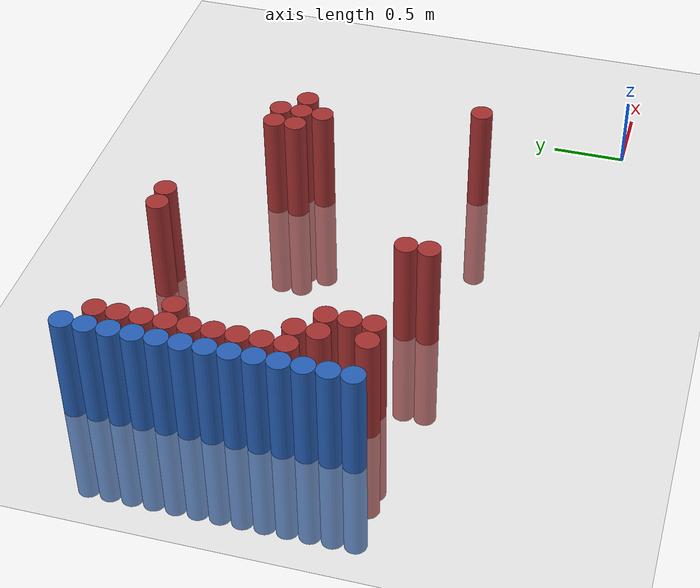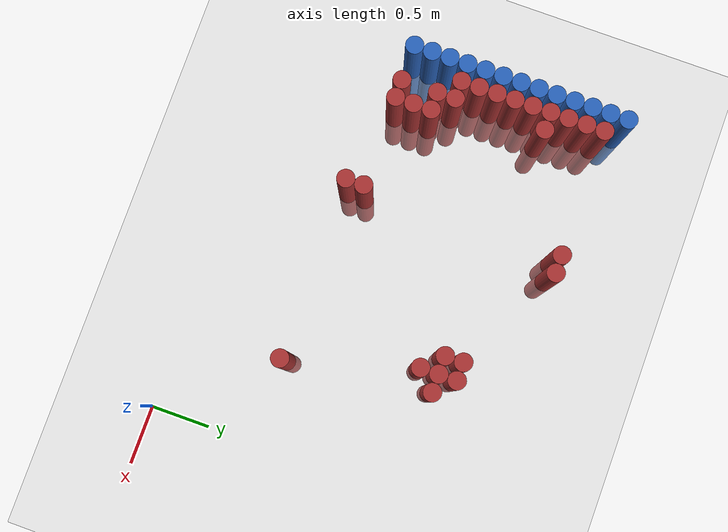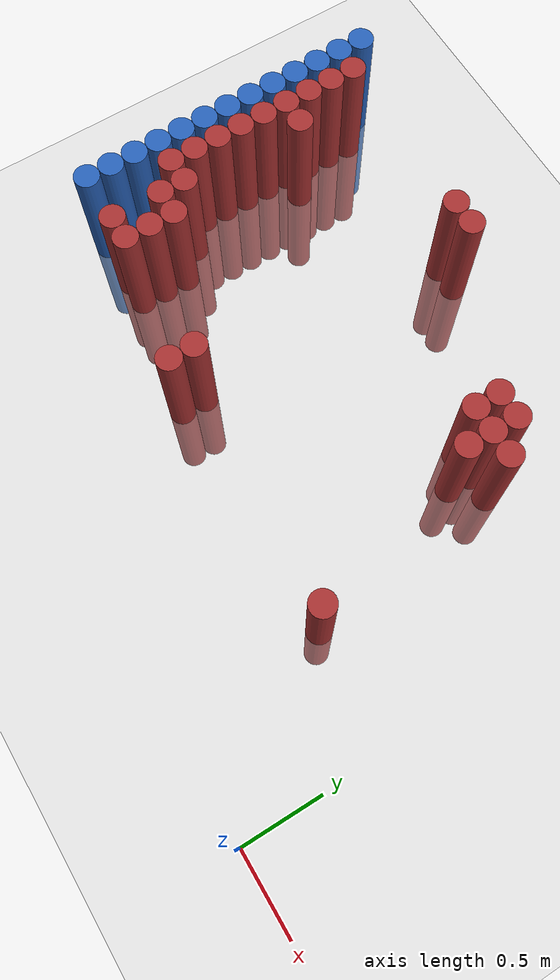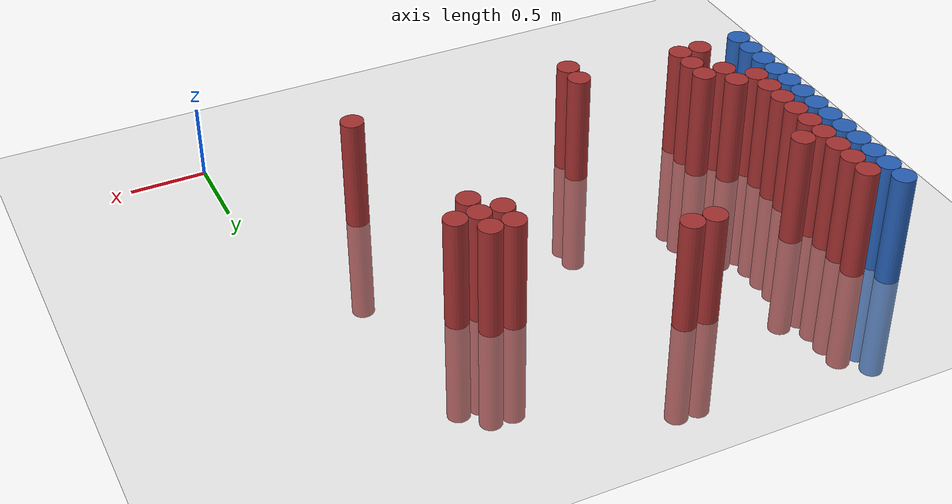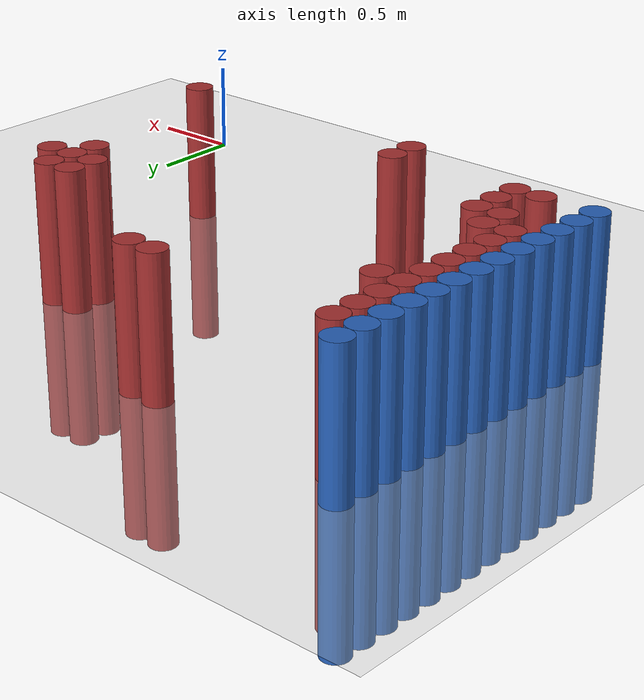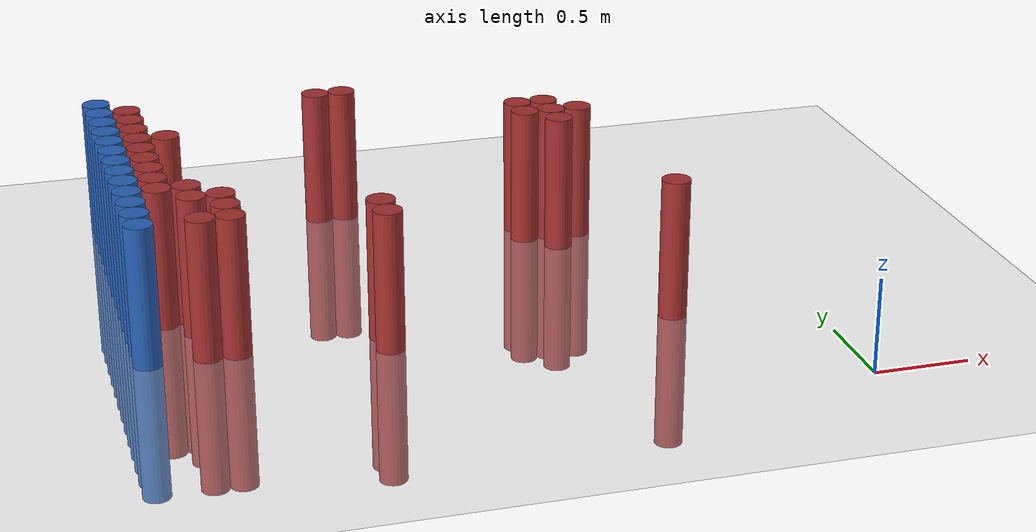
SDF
<sdf version="1.6">
 <world name="default">
  <model name="ground_plane">
   <static>1</static>
   <link name="link">
    <collision name="collision">
     <geometry><plane><normal>0 0 1</normal><size>100 100</size></plane></geometry>
     <surface><friction><ode><mu>100</mu><mu2>50</mu2></ode></friction></surface>
    </collision>
    <visual name="visual">
     <cast_shadows>0</cast_shadows>
     <geometry><plane><normal>0 0 1</normal><size>100 100</size></plane></geometry>
     <material>
      <script><uri>file://media/materials/scripts/gazebo.material</uri><name>Gazebo/Grey</name></script>
     </material>
    </visual>
   </link>
  </model>
  <model name="unit_cylinder_129">
   <static>1</static>
   <pose>-3.425000 1.075000 0.000000 0.000000 0.000000 0.000000</pose>
   <link name="link">
    <inertial>
     <mass>1</mass>
     <inertia><ixx>0.145833</ixx><ixy>0</ixy><ixz>0</ixz><iyy>0.145833</iyy><iyz>0</iyz><izz>0.125</izz></inertia>
    </inertial>
    <collision name="collision">
     <geometry><cylinder><radius>0.075000</radius><length>1.5</length></cylinder></geometry>
    </collision>
    <visual name="visual">
     <geometry><cylinder><radius>0.075000</radius><length>1.5</length></cylinder></geometry>
     <material>
      <ambient>0.152000 0.379000 0.720000 1</ambient>
      <diffuse>0.152000 0.379000 0.720000 1</diffuse>
     </material>
     <material>
      <script><name>Gazebo/Grey</name><uri>file://media/materials/scripts/gazebo.material</uri></script>
     </material>
    </visual>
   </link>
  </model>
  <model name="unit_cylinder_131">
   <static>1</static>
   <pose>-3.425000 1.225000 0.000000 0.000000 0.000000 0.000000</pose>
   <link name="link">
    <inertial>
     <mass>1</mass>
     <inertia><ixx>0.145833</ixx><ixy>0</ixy><ixz>0</ixz><iyy>0.145833</iyy><iyz>0</iyz><izz>0.125</izz></inertia>
    </inertial>
    <collision name="collision">
     <geometry><cylinder><radius>0.075000</radius><length>1.5</length></cylinder></geometry>
    </collision>
    <visual name="visual">
     <geometry><cylinder><radius>0.075000</radius><length>1.5</length></cylinder></geometry>
     <material>
      <ambient>0.152000 0.379000 0.720000 1</ambient>
      <diffuse>0.152000 0.379000 0.720000 1</diffuse>
     </material>
     <material>
      <script><name>Gazebo/Grey</name><uri>file://media/materials/scripts/gazebo.material</uri></script>
     </material>
    </visual>
   </link>
  </model>
  <model name="unit_cylinder_133">
   <static>1</static>
   <pose>-3.425000 1.375000 0.000000 0.000000 0.000000 0.000000</pose>
   <link name="link">
    <inertial>
     <mass>1</mass>
     <inertia><ixx>0.145833</ixx><ixy>0</ixy><ixz>0</ixz><iyy>0.145833</iyy><iyz>0</iyz><izz>0.125</izz></inertia>
    </inertial>
    <collision name="collision">
     <geometry><cylinder><radius>0.075000</radius><length>1.5</length></cylinder></geometry>
    </collision>
    <visual name="visual">
     <geometry><cylinder><radius>0.075000</radius><length>1.5</length></cylinder></geometry>
     <material>
      <ambient>0.152000 0.379000 0.720000 1</ambient>
      <diffuse>0.152000 0.379000 0.720000 1</diffuse>
     </material>
     <material>
      <script><name>Gazebo/Grey</name><uri>file://media/materials/scripts/gazebo.material</uri></script>
     </material>
    </visual>
   </link>
  </model>
  <model name="unit_cylinder_135">
   <static>1</static>
   <pose>-3.425000 1.525000 0.000000 0.000000 0.000000 0.000000</pose>
   <link name="link">
    <inertial>
     <mass>1</mass>
     <inertia><ixx>0.145833</ixx><ixy>0</ixy><ixz>0</ixz><iyy>0.145833</iyy><iyz>0</iyz><izz>0.125</izz></inertia>
    </inertial>
    <collision name="collision">
     <geometry><cylinder><radius>0.075000</radius><length>1.5</length></cylinder></geometry>
    </collision>
    <visual name="visual">
     <geometry><cylinder><radius>0.075000</radius><length>1.5</length></cylinder></geometry>
     <material>
      <ambient>0.152000 0.379000 0.720000 1</ambient>
      <diffuse>0.152000 0.379000 0.720000 1</diffuse>
     </material>
     <material>
      <script><name>Gazebo/Grey</name><uri>file://media/materials/scripts/gazebo.material</uri></script>
     </material>
    </visual>
   </link>
  </model>
  <model name="unit_cylinder_137">
   <static>1</static>
   <pose>-3.425000 1.675000 0.000000 0.000000 0.000000 0.000000</pose>
   <link name="link">
    <inertial>
     <mass>1</mass>
     <inertia><ixx>0.145833</ixx><ixy>0</ixy><ixz>0</ixz><iyy>0.145833</iyy><iyz>0</iyz><izz>0.125</izz></inertia>
    </inertial>
    <collision name="collision">
     <geometry><cylinder><radius>0.075000</radius><length>1.5</length></cylinder></geometry>
    </collision>
    <visual name="visual">
     <geometry><cylinder><radius>0.075000</radius><length>1.5</length></cylinder></geometry>
     <material>
      <ambient>0.152000 0.379000 0.720000 1</ambient>
      <diffuse>0.152000 0.379000 0.720000 1</diffuse>
     </material>
     <material>
      <script><name>Gazebo/Grey</name><uri>file://media/materials/scripts/gazebo.material</uri></script>
     </material>
    </visual>
   </link>
  </model>
  <model name="unit_cylinder_139">
   <static>1</static>
   <pose>-3.425000 1.825000 0.000000 0.000000 0.000000 0.000000</pose>
   <link name="link">
    <inertial>
     <mass>1</mass>
     <inertia><ixx>0.145833</ixx><ixy>0</ixy><ixz>0</ixz><iyy>0.145833</iyy><iyz>0</iyz><izz>0.125</izz></inertia>
    </inertial>
    <collision name="collision">
     <geometry><cylinder><radius>0.075000</radius><length>1.5</length></cylinder></geometry>
    </collision>
    <visual name="visual">
     <geometry><cylinder><radius>0.075000</radius><length>1.5</length></cylinder></geometry>
     <material>
      <ambient>0.152000 0.379000 0.720000 1</ambient>
      <diffuse>0.152000 0.379000 0.720000 1</diffuse>
     </material>
     <material>
      <script><name>Gazebo/Grey</name><uri>file://media/materials/scripts/gazebo.material</uri></script>
     </material>
    </visual>
   </link>
  </model>
  <model name="unit_cylinder_141">
   <static>1</static>
   <pose>-3.425000 1.975000 0.000000 0.000000 0.000000 0.000000</pose>
   <link name="link">
    <inertial>
     <mass>1</mass>
     <inertia><ixx>0.145833</ixx><ixy>0</ixy><ixz>0</ixz><iyy>0.145833</iyy><iyz>0</iyz><izz>0.125</izz></inertia>
    </inertial>
    <collision name="collision">
     <geometry><cylinder><radius>0.075000</radius><length>1.5</length></cylinder></geometry>
    </collision>
    <visual name="visual">
     <geometry><cylinder><radius>0.075000</radius><length>1.5</length></cylinder></geometry>
     <material>
      <ambient>0.152000 0.379000 0.720000 1</ambient>
      <diffuse>0.152000 0.379000 0.720000 1</diffuse>
     </material>
     <material>
      <script><name>Gazebo/Grey</name><uri>file://media/materials/scripts/gazebo.material</uri></script>
     </material>
    </visual>
   </link>
  </model>
  <model name="unit_cylinder_143">
   <static>1</static>
   <pose>-3.425000 2.125000 0.000000 0.000000 0.000000 0.000000</pose>
   <link name="link">
    <inertial>
     <mass>1</mass>
     <inertia><ixx>0.145833</ixx><ixy>0</ixy><ixz>0</ixz><iyy>0.145833</iyy><iyz>0</iyz><izz>0.125</izz></inertia>
    </inertial>
    <collision name="collision">
     <geometry><cylinder><radius>0.075000</radius><length>1.5</length></cylinder></geometry>
    </collision>
    <visual name="visual">
     <geometry><cylinder><radius>0.075000</radius><length>1.5</length></cylinder></geometry>
     <material>
      <ambient>0.152000 0.379000 0.720000 1</ambient>
      <diffuse>0.152000 0.379000 0.720000 1</diffuse>
     </material>
     <material>
      <script><name>Gazebo/Grey</name><uri>file://media/materials/scripts/gazebo.material</uri></script>
     </material>
    </visual>
   </link>
  </model>
  <model name="unit_cylinder_145">
   <static>1</static>
   <pose>-3.425000 2.275000 0.000000 0.000000 0.000000 0.000000</pose>
   <link name="link">
    <inertial>
     <mass>1</mass>
     <inertia><ixx>0.145833</ixx><ixy>0</ixy><ixz>0</ixz><iyy>0.145833</iyy><iyz>0</iyz><izz>0.125</izz></inertia>
    </inertial>
    <collision name="collision">
     <geometry><cylinder><radius>0.075000</radius><length>1.5</length></cylinder></geometry>
    </collision>
    <visual name="visual">
     <geometry><cylinder><radius>0.075000</radius><length>1.5</length></cylinder></geometry>
     <material>
      <ambient>0.152000 0.379000 0.720000 1</ambient>
      <diffuse>0.152000 0.379000 0.720000 1</diffuse>
     </material>
     <material>
      <script><name>Gazebo/Grey</name><uri>file://media/materials/scripts/gazebo.material</uri></script>
     </material>
    </visual>
   </link>
  </model>
  <model name="unit_cylinder_147">
   <static>1</static>
   <pose>-3.425000 2.425000 0.000000 0.000000 0.000000 0.000000</pose>
   <link name="link">
    <inertial>
     <mass>1</mass>
     <inertia><ixx>0.145833</ixx><ixy>0</ixy><ixz>0</ixz><iyy>0.145833</iyy><iyz>0</iyz><izz>0.125</izz></inertia>
    </inertial>
    <collision name="collision">
     <geometry><cylinder><radius>0.075000</radius><length>1.5</length></cylinder></geometry>
    </collision>
    <visual name="visual">
     <geometry><cylinder><radius>0.075000</radius><length>1.5</length></cylinder></geometry>
     <material>
      <ambient>0.152000 0.379000 0.720000 1</ambient>
      <diffuse>0.152000 0.379000 0.720000 1</diffuse>
     </material>
     <material>
      <script><name>Gazebo/Grey</name><uri>file://media/materials/scripts/gazebo.material</uri></script>
     </material>
    </visual>
   </link>
  </model>
  <model name="unit_cylinder_149">
   <static>1</static>
   <pose>-3.425000 2.575000 0.000000 0.000000 0.000000 0.000000</pose>
   <link name="link">
    <inertial>
     <mass>1</mass>
     <inertia><ixx>0.145833</ixx><ixy>0</ixy><ixz>0</ixz><iyy>0.145833</iyy><iyz>0</iyz><izz>0.125</izz></inertia>
    </inertial>
    <collision name="collision">
     <geometry><cylinder><radius>0.075000</radius><length>1.5</length></cylinder></geometry>
    </collision>
    <visual name="visual">
     <geometry><cylinder><radius>0.075000</radius><length>1.5</length></cylinder></geometry>
     <material>
      <ambient>0.152000 0.379000 0.720000 1</ambient>
      <diffuse>0.152000 0.379000 0.720000 1</diffuse>
     </material>
     <material>
      <script><name>Gazebo/Grey</name><uri>file://media/materials/scripts/gazebo.material</uri></script>
     </material>
    </visual>
   </link>
  </model>
  <model name="unit_cylinder_151">
   <static>1</static>
   <pose>-3.425000 2.725000 0.000000 0.000000 0.000000 0.000000</pose>
   <link name="link">
    <inertial>
     <mass>1</mass>
     <inertia><ixx>0.145833</ixx><ixy>0</ixy><ixz>0</ixz><iyy>0.145833</iyy><iyz>0</iyz><izz>0.125</izz></inertia>
    </inertial>
    <collision name="collision">
     <geometry><cylinder><radius>0.075000</radius><length>1.5</length></cylinder></geometry>
    </collision>
    <visual name="visual">
     <geometry><cylinder><radius>0.075000</radius><length>1.5</length></cylinder></geometry>
     <material>
      <ambient>0.152000 0.379000 0.720000 1</ambient>
      <diffuse>0.152000 0.379000 0.720000 1</diffuse>
     </material>
     <material>
      <script><name>Gazebo/Grey</name><uri>file://media/materials/scripts/gazebo.material</uri></script>
     </material>
    </visual>
   </link>
  </model>
  <model name="unit_cylinder_153">
   <static>1</static>
   <pose>-3.425000 2.875000 0.000000 0.000000 0.000000 0.000000</pose>
   <link name="link">
    <inertial>
     <mass>1</mass>
     <inertia><ixx>0.145833</ixx><ixy>0</ixy><ixz>0</ixz><iyy>0.145833</iyy><iyz>0</iyz><izz>0.125</izz></inertia>
    </inertial>
    <collision name="collision">
     <geometry><cylinder><radius>0.075000</radius><length>1.5</length></cylinder></geometry>
    </collision>
    <visual name="visual">
     <geometry><cylinder><radius>0.075000</radius><length>1.5</length></cylinder></geometry>
     <material>
      <ambient>0.152000 0.379000 0.720000 1</ambient>
      <diffuse>0.152000 0.379000 0.720000 1</diffuse>
     </material>
     <material>
      <script><name>Gazebo/Grey</name><uri>file://media/materials/scripts/gazebo.material</uri></script>
     </material>
    </visual>
   </link>
  </model>
  <model name="unit_cylinder_228">
   <static>1</static>
   <pose>-3.425000 1.075000 0.000000 0.000000 0.000000 0.000000</pose>
   <link name="link">
    <inertial>
     <mass>1</mass>
     <inertia><ixx>0.145833</ixx><ixy>0</ixy><ixz>0</ixz><iyy>0.145833</iyy><iyz>0</iyz><izz>0.125</izz></inertia>
    </inertial>
    <collision name="collision">
     <geometry><cylinder><radius>0.075000</radius><length>1.5</length></cylinder></geometry>
    </collision>
    <visual name="visual">
     <geometry><cylinder><radius>0.075000</radius><length>1.5</length></cylinder></geometry>
     <material>
      <ambient>0.152000 0.379000 0.720000 1</ambient>
      <diffuse>0.152000 0.379000 0.720000 1</diffuse>
     </material>
     <material>
      <script><name>Gazebo/Grey</name><uri>file://media/materials/scripts/gazebo.material</uri></script>
     </material>
    </visual>
   </link>
  </model>
  <model name="unit_cylinder_229">
   <static>1</static>
   <pose>-3.425000 1.225000 0.000000 0.000000 0.000000 0.000000</pose>
   <link name="link">
    <inertial>
     <mass>1</mass>
     <inertia><ixx>0.145833</ixx><ixy>0</ixy><ixz>0</ixz><iyy>0.145833</iyy><iyz>0</iyz><izz>0.125</izz></inertia>
    </inertial>
    <collision name="collision">
     <geometry><cylinder><radius>0.075000</radius><length>1.5</length></cylinder></geometry>
    </collision>
    <visual name="visual">
     <geometry><cylinder><radius>0.075000</radius><length>1.5</length></cylinder></geometry>
     <material>
      <ambient>0.152000 0.379000 0.720000 1</ambient>
      <diffuse>0.152000 0.379000 0.720000 1</diffuse>
     </material>
     <material>
      <script><name>Gazebo/Grey</name><uri>file://media/materials/scripts/gazebo.material</uri></script>
     </material>
    </visual>
   </link>
  </model>
  <model name="unit_cylinder_230">
   <static>1</static>
   <pose>-3.425000 1.375000 0.000000 0.000000 0.000000 0.000000</pose>
   <link name="link">
    <inertial>
     <mass>1</mass>
     <inertia><ixx>0.145833</ixx><ixy>0</ixy><ixz>0</ixz><iyy>0.145833</iyy><iyz>0</iyz><izz>0.125</izz></inertia>
    </inertial>
    <collision name="collision">
     <geometry><cylinder><radius>0.075000</radius><length>1.5</length></cylinder></geometry>
    </collision>
    <visual name="visual">
     <geometry><cylinder><radius>0.075000</radius><length>1.5</length></cylinder></geometry>
     <material>
      <ambient>0.152000 0.379000 0.720000 1</ambient>
      <diffuse>0.152000 0.379000 0.720000 1</diffuse>
     </material>
     <material>
      <script><name>Gazebo/Grey</name><uri>file://media/materials/scripts/gazebo.material</uri></script>
     </material>
    </visual>
   </link>
  </model>
  <model name="unit_cylinder_231">
   <static>1</static>
   <pose>-3.425000 1.525000 0.000000 0.000000 0.000000 0.000000</pose>
   <link name="link">
    <inertial>
     <mass>1</mass>
     <inertia><ixx>0.145833</ixx><ixy>0</ixy><ixz>0</ixz><iyy>0.145833</iyy><iyz>0</iyz><izz>0.125</izz></inertia>
    </inertial>
    <collision name="collision">
     <geometry><cylinder><radius>0.075000</radius><length>1.5</length></cylinder></geometry>
    </collision>
    <visual name="visual">
     <geometry><cylinder><radius>0.075000</radius><length>1.5</length></cylinder></geometry>
     <material>
      <ambient>0.152000 0.379000 0.720000 1</ambient>
      <diffuse>0.152000 0.379000 0.720000 1</diffuse>
     </material>
     <material>
      <script><name>Gazebo/Grey</name><uri>file://media/materials/scripts/gazebo.material</uri></script>
     </material>
    </visual>
   </link>
  </model>
  <model name="unit_cylinder_232">
   <static>1</static>
   <pose>-3.425000 1.675000 0.000000 0.000000 0.000000 0.000000</pose>
   <link name="link">
    <inertial>
     <mass>1</mass>
     <inertia><ixx>0.145833</ixx><ixy>0</ixy><ixz>0</ixz><iyy>0.145833</iyy><iyz>0</iyz><izz>0.125</izz></inertia>
    </inertial>
    <collision name="collision">
     <geometry><cylinder><radius>0.075000</radius><length>1.5</length></cylinder></geometry>
    </collision>
    <visual name="visual">
     <geometry><cylinder><radius>0.075000</radius><length>1.5</length></cylinder></geometry>
     <material>
      <ambient>0.152000 0.379000 0.720000 1</ambient>
      <diffuse>0.152000 0.379000 0.720000 1</diffuse>
     </material>
     <material>
      <script><name>Gazebo/Grey</name><uri>file://media/materials/scripts/gazebo.material</uri></script>
     </material>
    </visual>
   </link>
  </model>
  <model name="unit_cylinder_233">
   <static>1</static>
   <pose>-3.425000 1.825000 0.000000 0.000000 0.000000 0.000000</pose>
   <link name="link">
    <inertial>
     <mass>1</mass>
     <inertia><ixx>0.145833</ixx><ixy>0</ixy><ixz>0</ixz><iyy>0.145833</iyy><iyz>0</iyz><izz>0.125</izz></inertia>
    </inertial>
    <collision name="collision">
     <geometry><cylinder><radius>0.075000</radius><length>1.5</length></cylinder></geometry>
    </collision>
    <visual name="visual">
     <geometry><cylinder><radius>0.075000</radius><length>1.5</length></cylinder></geometry>
     <material>
      <ambient>0.152000 0.379000 0.720000 1</ambient>
      <diffuse>0.152000 0.379000 0.720000 1</diffuse>
     </material>
     <material>
      <script><name>Gazebo/Grey</name><uri>file://media/materials/scripts/gazebo.material</uri></script>
     </material>
    </visual>
   </link>
  </model>
  <model name="unit_cylinder_234">
   <static>1</static>
   <pose>-3.425000 1.975000 0.000000 0.000000 0.000000 0.000000</pose>
   <link name="link">
    <inertial>
     <mass>1</mass>
     <inertia><ixx>0.145833</ixx><ixy>0</ixy><ixz>0</ixz><iyy>0.145833</iyy><iyz>0</iyz><izz>0.125</izz></inertia>
    </inertial>
    <collision name="collision">
     <geometry><cylinder><radius>0.075000</radius><length>1.5</length></cylinder></geometry>
    </collision>
    <visual name="visual">
     <geometry><cylinder><radius>0.075000</radius><length>1.5</length></cylinder></geometry>
     <material>
      <ambient>0.152000 0.379000 0.720000 1</ambient>
      <diffuse>0.152000 0.379000 0.720000 1</diffuse>
     </material>
     <material>
      <script><name>Gazebo/Grey</name><uri>file://media/materials/scripts/gazebo.material</uri></script>
     </material>
    </visual>
   </link>
  </model>
  <model name="unit_cylinder_235">
   <static>1</static>
   <pose>-3.425000 2.125000 0.000000 0.000000 0.000000 0.000000</pose>
   <link name="link">
    <inertial>
     <mass>1</mass>
     <inertia><ixx>0.145833</ixx><ixy>0</ixy><ixz>0</ixz><iyy>0.145833</iyy><iyz>0</iyz><izz>0.125</izz></inertia>
    </inertial>
    <collision name="collision">
     <geometry><cylinder><radius>0.075000</radius><length>1.5</length></cylinder></geometry>
    </collision>
    <visual name="visual">
     <geometry><cylinder><radius>0.075000</radius><length>1.5</length></cylinder></geometry>
     <material>
      <ambient>0.152000 0.379000 0.720000 1</ambient>
      <diffuse>0.152000 0.379000 0.720000 1</diffuse>
     </material>
     <material>
      <script><name>Gazebo/Grey</name><uri>file://media/materials/scripts/gazebo.material</uri></script>
     </material>
    </visual>
   </link>
  </model>
  <model name="unit_cylinder_236">
   <static>1</static>
   <pose>-3.425000 2.275000 0.000000 0.000000 0.000000 0.000000</pose>
   <link name="link">
    <inertial>
     <mass>1</mass>
     <inertia><ixx>0.145833</ixx><ixy>0</ixy><ixz>0</ixz><iyy>0.145833</iyy><iyz>0</iyz><izz>0.125</izz></inertia>
    </inertial>
    <collision name="collision">
     <geometry><cylinder><radius>0.075000</radius><length>1.5</length></cylinder></geometry>
    </collision>
    <visual name="visual">
     <geometry><cylinder><radius>0.075000</radius><length>1.5</length></cylinder></geometry>
     <material>
      <ambient>0.152000 0.379000 0.720000 1</ambient>
      <diffuse>0.152000 0.379000 0.720000 1</diffuse>
     </material>
     <material>
      <script><name>Gazebo/Grey</name><uri>file://media/materials/scripts/gazebo.material</uri></script>
     </material>
    </visual>
   </link>
  </model>
  <model name="unit_cylinder_237">
   <static>1</static>
   <pose>-3.425000 2.425000 0.000000 0.000000 0.000000 0.000000</pose>
   <link name="link">
    <inertial>
     <mass>1</mass>
     <inertia><ixx>0.145833</ixx><ixy>0</ixy><ixz>0</ixz><iyy>0.145833</iyy><iyz>0</iyz><izz>0.125</izz></inertia>
    </inertial>
    <collision name="collision">
     <geometry><cylinder><radius>0.075000</radius><length>1.5</length></cylinder></geometry>
    </collision>
    <visual name="visual">
     <geometry><cylinder><radius>0.075000</radius><length>1.5</length></cylinder></geometry>
     <material>
      <ambient>0.152000 0.379000 0.720000 1</ambient>
      <diffuse>0.152000 0.379000 0.720000 1</diffuse>
     </material>
     <material>
      <script><name>Gazebo/Grey</name><uri>file://media/materials/scripts/gazebo.material</uri></script>
     </material>
    </visual>
   </link>
  </model>
  <model name="unit_cylinder_238">
   <static>1</static>
   <pose>-3.425000 2.575000 0.000000 0.000000 0.000000 0.000000</pose>
   <link name="link">
    <inertial>
     <mass>1</mass>
     <inertia><ixx>0.145833</ixx><ixy>0</ixy><ixz>0</ixz><iyy>0.145833</iyy><iyz>0</iyz><izz>0.125</izz></inertia>
    </inertial>
    <collision name="collision">
     <geometry><cylinder><radius>0.075000</radius><length>1.5</length></cylinder></geometry>
    </collision>
    <visual name="visual">
     <geometry><cylinder><radius>0.075000</radius><length>1.5</length></cylinder></geometry>
     <material>
      <ambient>0.152000 0.379000 0.720000 1</ambient>
      <diffuse>0.152000 0.379000 0.720000 1</diffuse>
     </material>
     <material>
      <script><name>Gazebo/Grey</name><uri>file://media/materials/scripts/gazebo.material</uri></script>
     </material>
    </visual>
   </link>
  </model>
  <model name="unit_cylinder_239">
   <static>1</static>
   <pose>-3.425000 2.725000 0.000000 0.000000 0.000000 0.000000</pose>
   <link name="link">
    <inertial>
     <mass>1</mass>
     <inertia><ixx>0.145833</ixx><ixy>0</ixy><ixz>0</ixz><iyy>0.145833</iyy><iyz>0</iyz><izz>0.125</izz></inertia>
    </inertial>
    <collision name="collision">
     <geometry><cylinder><radius>0.075000</radius><length>1.5</length></cylinder></geometry>
    </collision>
    <visual name="visual">
     <geometry><cylinder><radius>0.075000</radius><length>1.5</length></cylinder></geometry>
     <material>
      <ambient>0.152000 0.379000 0.720000 1</ambient>
      <diffuse>0.152000 0.379000 0.720000 1</diffuse>
     </material>
     <material>
      <script><name>Gazebo/Grey</name><uri>file://media/materials/scripts/gazebo.material</uri></script>
     </material>
    </visual>
   </link>
  </model>
  <model name="unit_cylinder_262">
   <static>1</static>
   <pose>-3.275000 1.525000 0.000000 0.000000 0.000000 0.000000</pose>
   <link name="link">
    <inertial>
     <mass>1</mass>
     <inertia><ixx>0.145833</ixx><ixy>0</ixy><ixz>0</ixz><iyy>0.145833</iyy><iyz>0</iyz><izz>0.125</izz></inertia>
    </inertial>
    <collision name="collision">
     <geometry><cylinder><radius>0.075000</radius><length>1.5</length></cylinder></geometry>
    </collision>
    <visual name="visual">
     <geometry><cylinder><radius>0.075000</radius><length>1.5</length></cylinder></geometry>
     <material>
      <ambient>0.648000 0.192000 0.192000 1</ambient>
      <diffuse>0.648000 0.192000 0.192000 1</diffuse>
     </material>
     <material>
      <script><name>Gazebo/Grey</name><uri>file://media/materials/scripts/gazebo.material</uri></script>
     </material>
    </visual>
   </link>
  </model>
  <model name="unit_cylinder_263">
   <static>1</static>
   <pose>-3.275000 1.675000 0.000000 0.000000 0.000000 0.000000</pose>
   <link name="link">
    <inertial>
     <mass>1</mass>
     <inertia><ixx>0.145833</ixx><ixy>0</ixy><ixz>0</ixz><iyy>0.145833</iyy><iyz>0</iyz><izz>0.125</izz></inertia>
    </inertial>
    <collision name="collision">
     <geometry><cylinder><radius>0.075000</radius><length>1.5</length></cylinder></geometry>
    </collision>
    <visual name="visual">
     <geometry><cylinder><radius>0.075000</radius><length>1.5</length></cylinder></geometry>
     <material>
      <ambient>0.648000 0.192000 0.192000 1</ambient>
      <diffuse>0.648000 0.192000 0.192000 1</diffuse>
     </material>
     <material>
      <script><name>Gazebo/Grey</name><uri>file://media/materials/scripts/gazebo.material</uri></script>
     </material>
    </visual>
   </link>
  </model>
  <model name="unit_cylinder_264">
   <static>1</static>
   <pose>-3.275000 1.825000 0.000000 0.000000 0.000000 0.000000</pose>
   <link name="link">
    <inertial>
     <mass>1</mass>
     <inertia><ixx>0.145833</ixx><ixy>0</ixy><ixz>0</ixz><iyy>0.145833</iyy><iyz>0</iyz><izz>0.125</izz></inertia>
    </inertial>
    <collision name="collision">
     <geometry><cylinder><radius>0.075000</radius><length>1.5</length></cylinder></geometry>
    </collision>
    <visual name="visual">
     <geometry><cylinder><radius>0.075000</radius><length>1.5</length></cylinder></geometry>
     <material>
      <ambient>0.648000 0.192000 0.192000 1</ambient>
      <diffuse>0.648000 0.192000 0.192000 1</diffuse>
     </material>
     <material>
      <script><name>Gazebo/Grey</name><uri>file://media/materials/scripts/gazebo.material</uri></script>
     </material>
    </visual>
   </link>
  </model>
  <model name="unit_cylinder_265">
   <static>1</static>
   <pose>-3.275000 1.975000 0.000000 0.000000 0.000000 0.000000</pose>
   <link name="link">
    <inertial>
     <mass>1</mass>
     <inertia><ixx>0.145833</ixx><ixy>0</ixy><ixz>0</ixz><iyy>0.145833</iyy><iyz>0</iyz><izz>0.125</izz></inertia>
    </inertial>
    <collision name="collision">
     <geometry><cylinder><radius>0.075000</radius><length>1.5</length></cylinder></geometry>
    </collision>
    <visual name="visual">
     <geometry><cylinder><radius>0.075000</radius><length>1.5</length></cylinder></geometry>
     <material>
      <ambient>0.648000 0.192000 0.192000 1</ambient>
      <diffuse>0.648000 0.192000 0.192000 1</diffuse>
     </material>
     <material>
      <script><name>Gazebo/Grey</name><uri>file://media/materials/scripts/gazebo.material</uri></script>
     </material>
    </visual>
   </link>
  </model>
  <model name="unit_cylinder_266">
   <static>1</static>
   <pose>-3.275000 2.125000 0.000000 0.000000 0.000000 0.000000</pose>
   <link name="link">
    <inertial>
     <mass>1</mass>
     <inertia><ixx>0.145833</ixx><ixy>0</ixy><ixz>0</ixz><iyy>0.145833</iyy><iyz>0</iyz><izz>0.125</izz></inertia>
    </inertial>
    <collision name="collision">
     <geometry><cylinder><radius>0.075000</radius><length>1.5</length></cylinder></geometry>
    </collision>
    <visual name="visual">
     <geometry><cylinder><radius>0.075000</radius><length>1.5</length></cylinder></geometry>
     <material>
      <ambient>0.648000 0.192000 0.192000 1</ambient>
      <diffuse>0.648000 0.192000 0.192000 1</diffuse>
     </material>
     <material>
      <script><name>Gazebo/Grey</name><uri>file://media/materials/scripts/gazebo.material</uri></script>
     </material>
    </visual>
   </link>
  </model>
  <model name="unit_cylinder_267">
   <static>1</static>
   <pose>-3.275000 2.275000 0.000000 0.000000 0.000000 0.000000</pose>
   <link name="link">
    <inertial>
     <mass>1</mass>
     <inertia><ixx>0.145833</ixx><ixy>0</ixy><ixz>0</ixz><iyy>0.145833</iyy><iyz>0</iyz><izz>0.125</izz></inertia>
    </inertial>
    <collision name="collision">
     <geometry><cylinder><radius>0.075000</radius><length>1.5</length></cylinder></geometry>
    </collision>
    <visual name="visual">
     <geometry><cylinder><radius>0.075000</radius><length>1.5</length></cylinder></geometry>
     <material>
      <ambient>0.648000 0.192000 0.192000 1</ambient>
      <diffuse>0.648000 0.192000 0.192000 1</diffuse>
     </material>
     <material>
      <script><name>Gazebo/Grey</name><uri>file://media/materials/scripts/gazebo.material</uri></script>
     </material>
    </visual>
   </link>
  </model>
  <model name="unit_cylinder_268">
   <static>1</static>
   <pose>-3.275000 2.425000 0.000000 0.000000 0.000000 0.000000</pose>
   <link name="link">
    <inertial>
     <mass>1</mass>
     <inertia><ixx>0.145833</ixx><ixy>0</ixy><ixz>0</ixz><iyy>0.145833</iyy><iyz>0</iyz><izz>0.125</izz></inertia>
    </inertial>
    <collision name="collision">
     <geometry><cylinder><radius>0.075000</radius><length>1.5</length></cylinder></geometry>
    </collision>
    <visual name="visual">
     <geometry><cylinder><radius>0.075000</radius><length>1.5</length></cylinder></geometry>
     <material>
      <ambient>0.648000 0.192000 0.192000 1</ambient>
      <diffuse>0.648000 0.192000 0.192000 1</diffuse>
     </material>
     <material>
      <script><name>Gazebo/Grey</name><uri>file://media/materials/scripts/gazebo.material</uri></script>
     </material>
    </visual>
   </link>
  </model>
  <model name="unit_cylinder_269">
   <static>1</static>
   <pose>-3.275000 2.575000 0.000000 0.000000 0.000000 0.000000</pose>
   <link name="link">
    <inertial>
     <mass>1</mass>
     <inertia><ixx>0.145833</ixx><ixy>0</ixy><ixz>0</ixz><iyy>0.145833</iyy><iyz>0</iyz><izz>0.125</izz></inertia>
    </inertial>
    <collision name="collision">
     <geometry><cylinder><radius>0.075000</radius><length>1.5</length></cylinder></geometry>
    </collision>
    <visual name="visual">
     <geometry><cylinder><radius>0.075000</radius><length>1.5</length></cylinder></geometry>
     <material>
      <ambient>0.648000 0.192000 0.192000 1</ambient>
      <diffuse>0.648000 0.192000 0.192000 1</diffuse>
     </material>
     <material>
      <script><name>Gazebo/Grey</name><uri>file://media/materials/scripts/gazebo.material</uri></script>
     </material>
    </visual>
   </link>
  </model>
  <model name="unit_cylinder_270">
   <static>1</static>
   <pose>-3.275000 2.725000 0.000000 0.000000 0.000000 0.000000</pose>
   <link name="link">
    <inertial>
     <mass>1</mass>
     <inertia><ixx>0.145833</ixx><ixy>0</ixy><ixz>0</ixz><iyy>0.145833</iyy><iyz>0</iyz><izz>0.125</izz></inertia>
    </inertial>
    <collision name="collision">
     <geometry><cylinder><radius>0.075000</radius><length>1.5</length></cylinder></geometry>
    </collision>
    <visual name="visual">
     <geometry><cylinder><radius>0.075000</radius><length>1.5</length></cylinder></geometry>
     <material>
      <ambient>0.648000 0.192000 0.192000 1</ambient>
      <diffuse>0.648000 0.192000 0.192000 1</diffuse>
     </material>
     <material>
      <script><name>Gazebo/Grey</name><uri>file://media/materials/scripts/gazebo.material</uri></script>
     </material>
    </visual>
   </link>
  </model>
  <model name="unit_cylinder_286">
   <static>1</static>
   <pose>-3.125000 1.075000 0.000000 0.000000 0.000000 0.000000</pose>
   <link name="link">
    <inertial>
     <mass>1</mass>
     <inertia><ixx>0.145833</ixx><ixy>0</ixy><ixz>0</ixz><iyy>0.145833</iyy><iyz>0</iyz><izz>0.125</izz></inertia>
    </inertial>
    <collision name="collision">
     <geometry><cylinder><radius>0.075000</radius><length>1.5</length></cylinder></geometry>
    </collision>
    <visual name="visual">
     <geometry><cylinder><radius>0.075000</radius><length>1.5</length></cylinder></geometry>
     <material>
      <ambient>0.648000 0.192000 0.192000 1</ambient>
      <diffuse>0.648000 0.192000 0.192000 1</diffuse>
     </material>
     <material>
      <script><name>Gazebo/Grey</name><uri>file://media/materials/scripts/gazebo.material</uri></script>
     </material>
    </visual>
   </link>
  </model>
  <model name="unit_cylinder_287">
   <static>1</static>
   <pose>-3.125000 1.375000 0.000000 0.000000 0.000000 0.000000</pose>
   <link name="link">
    <inertial>
     <mass>1</mass>
     <inertia><ixx>0.145833</ixx><ixy>0</ixy><ixz>0</ixz><iyy>0.145833</iyy><iyz>0</iyz><izz>0.125</izz></inertia>
    </inertial>
    <collision name="collision">
     <geometry><cylinder><radius>0.075000</radius><length>1.5</length></cylinder></geometry>
    </collision>
    <visual name="visual">
     <geometry><cylinder><radius>0.075000</radius><length>1.5</length></cylinder></geometry>
     <material>
      <ambient>0.648000 0.192000 0.192000 1</ambient>
      <diffuse>0.648000 0.192000 0.192000 1</diffuse>
     </material>
     <material>
      <script><name>Gazebo/Grey</name><uri>file://media/materials/scripts/gazebo.material</uri></script>
     </material>
    </visual>
   </link>
  </model>
  <model name="unit_cylinder_288">
   <static>1</static>
   <pose>-3.125000 1.525000 0.000000 0.000000 0.000000 0.000000</pose>
   <link name="link">
    <inertial>
     <mass>1</mass>
     <inertia><ixx>0.145833</ixx><ixy>0</ixy><ixz>0</ixz><iyy>0.145833</iyy><iyz>0</iyz><izz>0.125</izz></inertia>
    </inertial>
    <collision name="collision">
     <geometry><cylinder><radius>0.075000</radius><length>1.5</length></cylinder></geometry>
    </collision>
    <visual name="visual">
     <geometry><cylinder><radius>0.075000</radius><length>1.5</length></cylinder></geometry>
     <material>
      <ambient>0.648000 0.192000 0.192000 1</ambient>
      <diffuse>0.648000 0.192000 0.192000 1</diffuse>
     </material>
     <material>
      <script><name>Gazebo/Grey</name><uri>file://media/materials/scripts/gazebo.material</uri></script>
     </material>
    </visual>
   </link>
  </model>
  <model name="unit_cylinder_289">
   <static>1</static>
   <pose>-3.125000 2.275000 0.000000 0.000000 0.000000 0.000000</pose>
   <link name="link">
    <inertial>
     <mass>1</mass>
     <inertia><ixx>0.145833</ixx><ixy>0</ixy><ixz>0</ixz><iyy>0.145833</iyy><iyz>0</iyz><izz>0.125</izz></inertia>
    </inertial>
    <collision name="collision">
     <geometry><cylinder><radius>0.075000</radius><length>1.5</length></cylinder></geometry>
    </collision>
    <visual name="visual">
     <geometry><cylinder><radius>0.075000</radius><length>1.5</length></cylinder></geometry>
     <material>
      <ambient>0.648000 0.192000 0.192000 1</ambient>
      <diffuse>0.648000 0.192000 0.192000 1</diffuse>
     </material>
     <material>
      <script><name>Gazebo/Grey</name><uri>file://media/materials/scripts/gazebo.material</uri></script>
     </material>
    </visual>
   </link>
  </model>
  <model name="unit_cylinder_300">
   <static>1</static>
   <pose>-2.975000 1.075000 0.000000 0.000000 0.000000 0.000000</pose>
   <link name="link">
    <inertial>
     <mass>1</mass>
     <inertia><ixx>0.145833</ixx><ixy>0</ixy><ixz>0</ixz><iyy>0.145833</iyy><iyz>0</iyz><izz>0.125</izz></inertia>
    </inertial>
    <collision name="collision">
     <geometry><cylinder><radius>0.075000</radius><length>1.5</length></cylinder></geometry>
    </collision>
    <visual name="visual">
     <geometry><cylinder><radius>0.075000</radius><length>1.5</length></cylinder></geometry>
     <material>
      <ambient>0.648000 0.192000 0.192000 1</ambient>
      <diffuse>0.648000 0.192000 0.192000 1</diffuse>
     </material>
     <material>
      <script><name>Gazebo/Grey</name><uri>file://media/materials/scripts/gazebo.material</uri></script>
     </material>
    </visual>
   </link>
  </model>
  <model name="unit_cylinder_301">
   <static>1</static>
   <pose>-2.975000 1.225000 0.000000 0.000000 0.000000 0.000000</pose>
   <link name="link">
    <inertial>
     <mass>1</mass>
     <inertia><ixx>0.145833</ixx><ixy>0</ixy><ixz>0</ixz><iyy>0.145833</iyy><iyz>0</iyz><izz>0.125</izz></inertia>
    </inertial>
    <collision name="collision">
     <geometry><cylinder><radius>0.075000</radius><length>1.5</length></cylinder></geometry>
    </collision>
    <visual name="visual">
     <geometry><cylinder><radius>0.075000</radius><length>1.5</length></cylinder></geometry>
     <material>
      <ambient>0.648000 0.192000 0.192000 1</ambient>
      <diffuse>0.648000 0.192000 0.192000 1</diffuse>
     </material>
     <material>
      <script><name>Gazebo/Grey</name><uri>file://media/materials/scripts/gazebo.material</uri></script>
     </material>
    </visual>
   </link>
  </model>
  <model name="unit_cylinder_302">
   <static>1</static>
   <pose>-2.975000 1.375000 0.000000 0.000000 0.000000 0.000000</pose>
   <link name="link">
    <inertial>
     <mass>1</mass>
     <inertia><ixx>0.145833</ixx><ixy>0</ixy><ixz>0</ixz><iyy>0.145833</iyy><iyz>0</iyz><izz>0.125</izz></inertia>
    </inertial>
    <collision name="collision">
     <geometry><cylinder><radius>0.075000</radius><length>1.5</length></cylinder></geometry>
    </collision>
    <visual name="visual">
     <geometry><cylinder><radius>0.075000</radius><length>1.5</length></cylinder></geometry>
     <material>
      <ambient>0.648000 0.192000 0.192000 1</ambient>
      <diffuse>0.648000 0.192000 0.192000 1</diffuse>
     </material>
     <material>
      <script><name>Gazebo/Grey</name><uri>file://media/materials/scripts/gazebo.material</uri></script>
     </material>
    </visual>
   </link>
  </model>
  <model name="unit_cylinder_320">
   <static>1</static>
   <pose>-2.225000 0.925000 0.000000 0.000000 0.000000 0.000000</pose>
   <link name="link">
    <inertial>
     <mass>1</mass>
     <inertia><ixx>0.145833</ixx><ixy>0</ixy><ixz>0</ixz><iyy>0.145833</iyy><iyz>0</iyz><izz>0.125</izz></inertia>
    </inertial>
    <collision name="collision">
     <geometry><cylinder><radius>0.075000</radius><length>1.5</length></cylinder></geometry>
    </collision>
    <visual name="visual">
     <geometry><cylinder><radius>0.075000</radius><length>1.5</length></cylinder></geometry>
     <material>
      <ambient>0.648000 0.192000 0.192000 1</ambient>
      <diffuse>0.648000 0.192000 0.192000 1</diffuse>
     </material>
     <material>
      <script><name>Gazebo/Grey</name><uri>file://media/materials/scripts/gazebo.material</uri></script>
     </material>
    </visual>
   </link>
  </model>
  <model name="unit_cylinder_321">
   <static>1</static>
   <pose>-2.225000 1.075000 0.000000 0.000000 0.000000 0.000000</pose>
   <link name="link">
    <inertial>
     <mass>1</mass>
     <inertia><ixx>0.145833</ixx><ixy>0</ixy><ixz>0</ixz><iyy>0.145833</iyy><iyz>0</iyz><izz>0.125</izz></inertia>
    </inertial>
    <collision name="collision">
     <geometry><cylinder><radius>0.075000</radius><length>1.5</length></cylinder></geometry>
    </collision>
    <visual name="visual">
     <geometry><cylinder><radius>0.075000</radius><length>1.5</length></cylinder></geometry>
     <material>
      <ambient>0.648000 0.192000 0.192000 1</ambient>
      <diffuse>0.648000 0.192000 0.192000 1</diffuse>
     </material>
     <material>
      <script><name>Gazebo/Grey</name><uri>file://media/materials/scripts/gazebo.material</uri></script>
     </material>
    </visual>
   </link>
  </model>
  <model name="unit_cylinder_322">
   <static>1</static>
   <pose>-2.225000 2.725000 0.000000 0.000000 0.000000 0.000000</pose>
   <link name="link">
    <inertial>
     <mass>1</mass>
     <inertia><ixx>0.145833</ixx><ixy>0</ixy><ixz>0</ixz><iyy>0.145833</iyy><iyz>0</iyz><izz>0.125</izz></inertia>
    </inertial>
    <collision name="collision">
     <geometry><cylinder><radius>0.075000</radius><length>1.5</length></cylinder></geometry>
    </collision>
    <visual name="visual">
     <geometry><cylinder><radius>0.075000</radius><length>1.5</length></cylinder></geometry>
     <material>
      <ambient>0.648000 0.192000 0.192000 1</ambient>
      <diffuse>0.648000 0.192000 0.192000 1</diffuse>
     </material>
     <material>
      <script><name>Gazebo/Grey</name><uri>file://media/materials/scripts/gazebo.material</uri></script>
     </material>
    </visual>
   </link>
  </model>
  <model name="unit_cylinder_335">
   <static>1</static>
   <pose>-2.075000 2.725000 0.000000 0.000000 0.000000 0.000000</pose>
   <link name="link">
    <inertial>
     <mass>1</mass>
     <inertia><ixx>0.145833</ixx><ixy>0</ixy><ixz>0</ixz><iyy>0.145833</iyy><iyz>0</iyz><izz>0.125</izz></inertia>
    </inertial>
    <collision name="collision">
     <geometry><cylinder><radius>0.075000</radius><length>1.5</length></cylinder></geometry>
    </collision>
    <visual name="visual">
     <geometry><cylinder><radius>0.075000</radius><length>1.5</length></cylinder></geometry>
     <material>
      <ambient>0.648000 0.192000 0.192000 1</ambient>
      <diffuse>0.648000 0.192000 0.192000 1</diffuse>
     </material>
     <material>
      <script><name>Gazebo/Grey</name><uri>file://media/materials/scripts/gazebo.material</uri></script>
     </material>
    </visual>
   </link>
  </model>
  <model name="unit_cylinder_406">
   <static>1</static>
   <pose>-1.175000 2.125000 0.000000 0.000000 0.000000 0.000000</pose>
   <link name="link">
    <inertial>
     <mass>1</mass>
     <inertia><ixx>0.145833</ixx><ixy>0</ixy><ixz>0</ixz><iyy>0.145833</iyy><iyz>0</iyz><izz>0.125</izz></inertia>
    </inertial>
    <collision name="collision">
     <geometry><cylinder><radius>0.075000</radius><length>1.5</length></cylinder></geometry>
    </collision>
    <visual name="visual">
     <geometry><cylinder><radius>0.075000</radius><length>1.5</length></cylinder></geometry>
     <material>
      <ambient>0.648000 0.192000 0.192000 1</ambient>
      <diffuse>0.648000 0.192000 0.192000 1</diffuse>
     </material>
     <material>
      <script><name>Gazebo/Grey</name><uri>file://media/materials/scripts/gazebo.material</uri></script>
     </material>
    </visual>
   </link>
  </model>
  <model name="unit_cylinder_407">
   <static>1</static>
   <pose>-1.175000 2.275000 0.000000 0.000000 0.000000 0.000000</pose>
   <link name="link">
    <inertial>
     <mass>1</mass>
     <inertia><ixx>0.145833</ixx><ixy>0</ixy><ixz>0</ixz><iyy>0.145833</iyy><iyz>0</iyz><izz>0.125</izz></inertia>
    </inertial>
    <collision name="collision">
     <geometry><cylinder><radius>0.075000</radius><length>1.5</length></cylinder></geometry>
    </collision>
    <visual name="visual">
     <geometry><cylinder><radius>0.075000</radius><length>1.5</length></cylinder></geometry>
     <material>
      <ambient>0.648000 0.192000 0.192000 1</ambient>
      <diffuse>0.648000 0.192000 0.192000 1</diffuse>
     </material>
     <material>
      <script><name>Gazebo/Grey</name><uri>file://media/materials/scripts/gazebo.material</uri></script>
     </material>
    </visual>
   </link>
  </model>
  <model name="unit_cylinder_417">
   <static>1</static>
   <pose>-1.025000 1.975000 0.000000 0.000000 0.000000 0.000000</pose>
   <link name="link">
    <inertial>
     <mass>1</mass>
     <inertia><ixx>0.145833</ixx><ixy>0</ixy><ixz>0</ixz><iyy>0.145833</iyy><iyz>0</iyz><izz>0.125</izz></inertia>
    </inertial>
    <collision name="collision">
     <geometry><cylinder><radius>0.075000</radius><length>1.5</length></cylinder></geometry>
    </collision>
    <visual name="visual">
     <geometry><cylinder><radius>0.075000</radius><length>1.5</length></cylinder></geometry>
     <material>
      <ambient>0.648000 0.192000 0.192000 1</ambient>
      <diffuse>0.648000 0.192000 0.192000 1</diffuse>
     </material>
     <material>
      <script><name>Gazebo/Grey</name><uri>file://media/materials/scripts/gazebo.material</uri></script>
     </material>
    </visual>
   </link>
  </model>
  <model name="unit_cylinder_418">
   <static>1</static>
   <pose>-1.025000 2.125000 0.000000 0.000000 0.000000 0.000000</pose>
   <link name="link">
    <inertial>
     <mass>1</mass>
     <inertia><ixx>0.145833</ixx><ixy>0</ixy><ixz>0</ixz><iyy>0.145833</iyy><iyz>0</iyz><izz>0.125</izz></inertia>
    </inertial>
    <collision name="collision">
     <geometry><cylinder><radius>0.075000</radius><length>1.5</length></cylinder></geometry>
    </collision>
    <visual name="visual">
     <geometry><cylinder><radius>0.075000</radius><length>1.5</length></cylinder></geometry>
     <material>
      <ambient>0.648000 0.192000 0.192000 1</ambient>
      <diffuse>0.648000 0.192000 0.192000 1</diffuse>
     </material>
     <material>
      <script><name>Gazebo/Grey</name><uri>file://media/materials/scripts/gazebo.material</uri></script>
     </material>
    </visual>
   </link>
  </model>
  <model name="unit_cylinder_419">
   <static>1</static>
   <pose>-1.025000 2.275000 0.000000 0.000000 0.000000 0.000000</pose>
   <link name="link">
    <inertial>
     <mass>1</mass>
     <inertia><ixx>0.145833</ixx><ixy>0</ixy><ixz>0</ixz><iyy>0.145833</iyy><iyz>0</iyz><izz>0.125</izz></inertia>
    </inertial>
    <collision name="collision">
     <geometry><cylinder><radius>0.075000</radius><length>1.5</length></cylinder></geometry>
    </collision>
    <visual name="visual">
     <geometry><cylinder><radius>0.075000</radius><length>1.5</length></cylinder></geometry>
     <material>
      <ambient>0.648000 0.192000 0.192000 1</ambient>
      <diffuse>0.648000 0.192000 0.192000 1</diffuse>
     </material>
     <material>
      <script><name>Gazebo/Grey</name><uri>file://media/materials/scripts/gazebo.material</uri></script>
     </material>
    </visual>
   </link>
  </model>
  <model name="unit_cylinder_427">
   <static>1</static>
   <pose>-0.875000 2.125000 0.000000 0.000000 0.000000 0.000000</pose>
   <link name="link">
    <inertial>
     <mass>1</mass>
     <inertia><ixx>0.145833</ixx><ixy>0</ixy><ixz>0</ixz><iyy>0.145833</iyy><iyz>0</iyz><izz>0.125</izz></inertia>
    </inertial>
    <collision name="collision">
     <geometry><cylinder><radius>0.075000</radius><length>1.5</length></cylinder></geometry>
    </collision>
    <visual name="visual">
     <geometry><cylinder><radius>0.075000</radius><length>1.5</length></cylinder></geometry>
     <material>
      <ambient>0.648000 0.192000 0.192000 1</ambient>
      <diffuse>0.648000 0.192000 0.192000 1</diffuse>
     </material>
     <material>
      <script><name>Gazebo/Grey</name><uri>file://media/materials/scripts/gazebo.material</uri></script>
     </material>
    </visual>
   </link>
  </model>
  <model name="unit_cylinder_433">
   <static>1</static>
   <pose>-0.725000 0.925000 0.000000 0.000000 0.000000 0.000000</pose>
   <link name="link">
    <inertial>
     <mass>1</mass>
     <inertia><ixx>0.145833</ixx><ixy>0</ixy><ixz>0</ixz><iyy>0.145833</iyy><iyz>0</iyz><izz>0.125</izz></inertia>
    </inertial>
    <collision name="collision">
     <geometry><cylinder><radius>0.075000</radius><length>1.5</length></cylinder></geometry>
    </collision>
    <visual name="visual">
     <geometry><cylinder><radius>0.075000</radius><length>1.5</length></cylinder></geometry>
     <material>
      <ambient>0.648000 0.192000 0.192000 1</ambient>
      <diffuse>0.648000 0.192000 0.192000 1</diffuse>
     </material>
     <material>
      <script><name>Gazebo/Grey</name><uri>file://media/materials/scripts/gazebo.material</uri></script>
     </material>
    </visual>
   </link>
  </model>
 </world>
</sdf>
